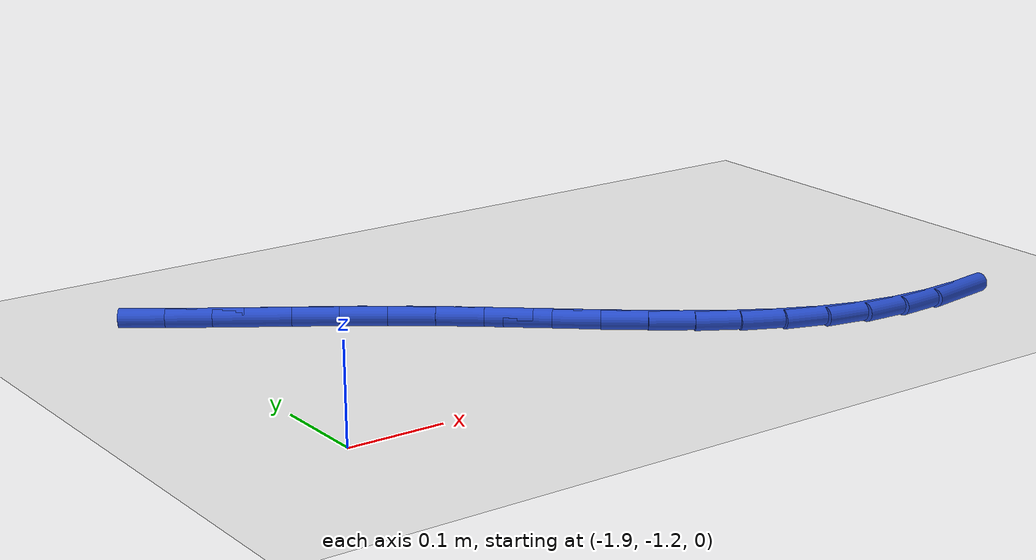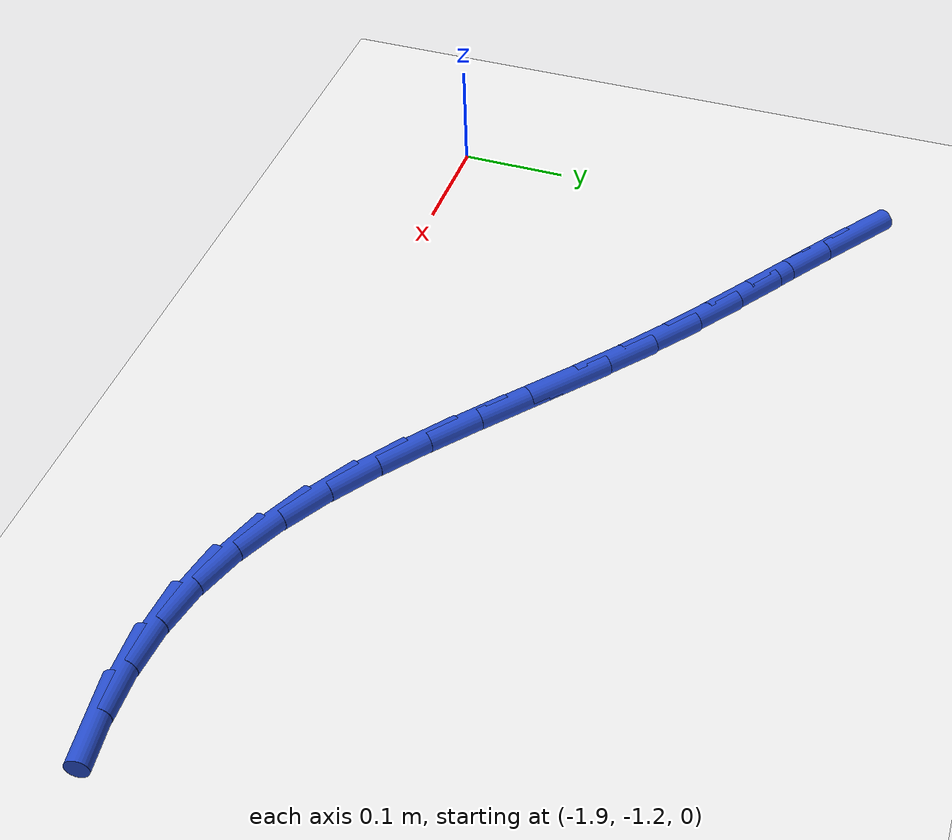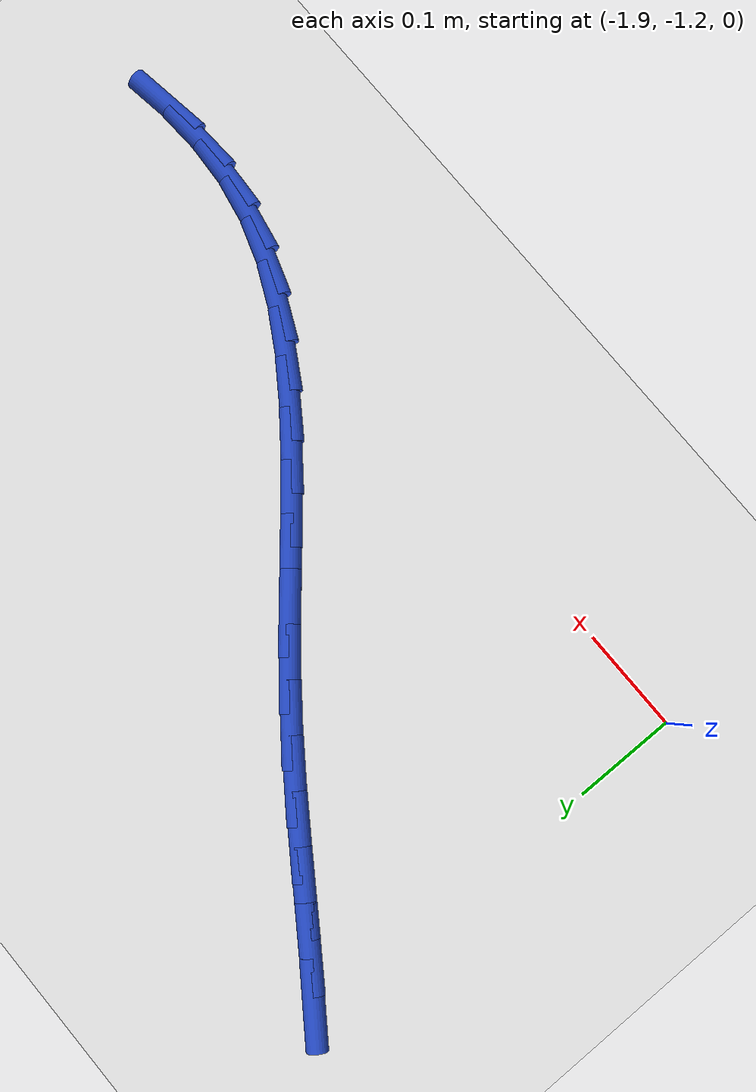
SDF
<sdf version="1.6">
 <world name="default">
  <model name="ground_plane">
   <static>1</static>
   <link name="link">
    <collision name="collision">
     <geometry><plane><normal>0 0 1</normal><size>100 100</size></plane></geometry>
     <surface><friction><ode><mu>100</mu><mu2>50</mu2></ode></friction></surface>
    </collision>
    <visual name="visual">
     <cast_shadows>0</cast_shadows>
     <geometry><plane><normal>0 0 1</normal><size>100 100</size></plane></geometry>
     <material>
      <script><uri>file://media/materials/scripts/gazebo.material</uri><name>Gazebo/WhiteGlow</name></script>
     </material>
    </visual>
   </link>
  </model>
  <model name="line">
   <link name="link_94">
    <pose>-1.8832917893304795 -0.8033387077930532 0.01 0 1.57 -0.6156576389026842</pose>
    <collision name="collision">
     <geometry><cylinder><radius>0.01</radius><length>0.08</length></cylinder></geometry>
    </collision>
    <visual name="visual">
     <material>
      <script><name>Gazebo/Blue</name><uri>file://media/materials/scripts/gazebo.material</uri></script>
     </material>
     <geometry><cylinder><radius>0.01</radius><length>0.08</length></cylinder></geometry>
    </visual>
   </link>
   <link name="link_95">
    <pose>-1.8446447985884504 -0.8306765730192794 0.01 0 1.57 -0.6001024888914664</pose>
    <collision name="collision">
     <geometry><cylinder><radius>0.01</radius><length>0.08</length></cylinder></geometry>
    </collision>
    <visual name="visual">
     <material>
      <script><name>Gazebo/Blue</name><uri>file://media/materials/scripts/gazebo.material</uri></script>
     </material>
     <geometry><cylinder><radius>0.01</radius><length>0.08</length></cylinder></geometry>
    </visual>
   </link>
   <link name="link_96">
    <pose>-1.8051309514042269 -0.8577153959131579 0.01 0 1.57 -0.5970113992315201</pose>
    <collision name="collision">
     <geometry><cylinder><radius>0.01</radius><length>0.08</length></cylinder></geometry>
    </collision>
    <visual name="visual">
     <material>
      <script><name>Gazebo/Blue</name><uri>file://media/materials/scripts/gazebo.material</uri></script>
     </material>
     <geometry><cylinder><radius>0.01</radius><length>0.08</length></cylinder></geometry>
    </visual>
   </link>
   <link name="link_97">
    <pose>-1.7651307719340887 -0.8849058520132681 0.01 0 1.57 -0.60600098085211</pose>
    <collision name="collision">
     <geometry><cylinder><radius>0.01</radius><length>0.08</length></cylinder></geometry>
    </collision>
    <visual name="visual">
     <material>
      <script><name>Gazebo/Blue</name><uri>file://media/materials/scripts/gazebo.material</uri></script>
     </material>
     <geometry><cylinder><radius>0.01</radius><length>0.08</length></cylinder></geometry>
    </visual>
   </link>
   <link name="link_98">
    <pose>-1.7250247843343214 -0.9126986168581882 0.01 0 1.57 -0.6267826666569197</pose>
    <collision name="collision">
     <geometry><cylinder><radius>0.01</radius><length>0.08</length></cylinder></geometry>
    </collision>
    <visual name="visual">
     <material>
      <script><name>Gazebo/Blue</name><uri>file://media/materials/scripts/gazebo.material</uri></script>
     </material>
     <geometry><cylinder><radius>0.01</radius><length>0.08</length></cylinder></geometry>
    </visual>
   </link>
   <link name="link_99">
    <pose>-1.6851935127612057 -0.9415443659864984 0.01 0 1.57 -0.6586759367988473</pose>
    <collision name="collision">
     <geometry><cylinder><radius>0.01</radius><length>0.08</length></cylinder></geometry>
    </collision>
    <visual name="visual">
     <material>
      <script><name>Gazebo/Blue</name><uri>file://media/materials/scripts/gazebo.material</uri></script>
     </material>
     <geometry><cylinder><radius>0.01</radius><length>0.08</length></cylinder></geometry>
    </visual>
   </link>
   <link name="link_100">
    <pose>-1.6460073690145287 -0.9718738727205092 0.01 0 1.57 -0.6890542026355025</pose>
    <collision name="collision">
     <geometry><cylinder><radius>0.01</radius><length>0.08</length></cylinder></geometry>
    </collision>
    <visual name="visual">
     <material>
      <script><name>Gazebo/Blue</name><uri>file://media/materials/scripts/gazebo.material</uri></script>
     </material>
     <geometry><cylinder><radius>0.01</radius><length>0.08</length></cylinder></geometry>
    </visual>
   </link>
   <link name="link_101">
    <pose>-1.607549821015433 -1.0035531736536158 0.01 0 1.57 -0.7043760636793011</pose>
    <collision name="collision">
     <geometry><cylinder><radius>0.01</radius><length>0.08</length></cylinder></geometry>
    </collision>
    <visual name="visual">
     <material>
      <script><name>Gazebo/Blue</name><uri>file://media/materials/scripts/gazebo.material</uri></script>
     </material>
     <geometry><cylinder><radius>0.01</radius><length>0.08</length></cylinder></geometry>
    </visual>
   </link>
   <link name="link_102">
    <pose>-1.5695834881061765 -1.035816840516569 0.01 0 1.57 -0.7041754456015676</pose>
    <collision name="collision">
     <geometry><cylinder><radius>0.01</radius><length>0.08</length></cylinder></geometry>
    </collision>
    <visual name="visual">
     <material>
      <script><name>Gazebo/Blue</name><uri>file://media/materials/scripts/gazebo.material</uri></script>
     </material>
     <geometry><cylinder><radius>0.01</radius><length>0.08</length></cylinder></geometry>
    </visual>
   </link>
   <link name="link_103">
    <pose>-1.5318540698077663 -1.0678661449935942 0.01 0 1.57 -0.68814421547477</pose>
    <collision name="collision">
     <geometry><cylinder><radius>0.01</radius><length>0.08</length></cylinder></geometry>
    </collision>
    <visual name="visual">
     <material>
      <script><name>Gazebo/Blue</name><uri>file://media/materials/scripts/gazebo.material</uri></script>
     </material>
     <geometry><cylinder><radius>0.01</radius><length>0.08</length></cylinder></geometry>
    </visual>
   </link>
   <link name="link_104">
    <pose>-1.4941072656412067 -1.0989023587689155 0.01 0 1.57 -0.6553551575679234</pose>
    <collision name="collision">
     <geometry><cylinder><radius>0.01</radius><length>0.08</length></cylinder></geometry>
    </collision>
    <visual name="visual">
     <material>
      <script><name>Gazebo/Blue</name><uri>file://media/materials/scripts/gazebo.material</uri></script>
     </material>
     <geometry><cylinder><radius>0.01</radius><length>0.08</length></cylinder></geometry>
    </visual>
   </link>
   <link name="link_105">
    <pose>-1.4560887751275047 -1.1281267535267598 0.01 0 1.57 -0.6043020555225758</pose>
    <collision name="collision">
     <geometry><cylinder><radius>0.01</radius><length>0.08</length></cylinder></geometry>
    </collision>
    <visual name="visual">
     <material>
      <script><name>Gazebo/Blue</name><uri>file://media/materials/scripts/gazebo.material</uri></script>
     </material>
     <geometry><cylinder><radius>0.01</radius><length>0.08</length></cylinder></geometry>
    </visual>
   </link>
   <link name="link_106">
    <pose>-1.4175442977876658 -1.1547406009513526 0.01 0 1.57 -0.5330899549238965</pose>
    <collision name="collision">
     <geometry><cylinder><radius>0.01</radius><length>0.08</length></cylinder></geometry>
    </collision>
    <visual name="visual">
     <material>
      <script><name>Gazebo/Blue</name><uri>file://media/materials/scripts/gazebo.material</uri></script>
     </material>
     <geometry><cylinder><radius>0.01</radius><length>0.08</length></cylinder></geometry>
    </visual>
   </link>
   <link name="link_107">
    <pose>-1.378219533142695 -1.177945172726919 0.01 0 1.57 -0.4399223284579075</pose>
    <collision name="collision">
     <geometry><cylinder><radius>0.01</radius><length>0.08</length></cylinder></geometry>
    </collision>
    <visual name="visual">
     <material>
      <script><name>Gazebo/Blue</name><uri>file://media/materials/scripts/gazebo.material</uri></script>
     </material>
     <geometry><cylinder><radius>0.01</radius><length>0.08</length></cylinder></geometry>
    </visual>
   </link>
   <link name="link_108">
    <pose>-1.3378601807135984 -1.1969417405376848 0.01 0 1.57 -0.32406290440725355</pose>
    <collision name="collision">
     <geometry><cylinder><radius>0.01</radius><length>0.08</length></cylinder></geometry>
    </collision>
    <visual name="visual">
     <material>
      <script><name>Gazebo/Blue</name><uri>file://media/materials/scripts/gazebo.material</uri></script>
     </material>
     <geometry><cylinder><radius>0.01</radius><length>0.08</length></cylinder></geometry>
    </visual>
   </link>
   <link name="link_109">
    <pose>-1.296211940021382 -1.2109315760678754 0.01 0 1.57 -0.1897426965612398</pose>
    <collision name="collision">
     <geometry><cylinder><radius>0.01</radius><length>0.08</length></cylinder></geometry>
    </collision>
    <visual name="visual">
     <material>
      <script><name>Gazebo/Blue</name><uri>file://media/materials/scripts/gazebo.material</uri></script>
     </material>
     <geometry><cylinder><radius>0.01</radius><length>0.08</length></cylinder></geometry>
    </visual>
   </link>
   <link name="link_110">
    <pose>-1.2530619437459654 -1.2192186636165587 0.01 0 1.57 -0.061203558707032195</pose>
    <collision name="collision">
     <geometry><cylinder><radius>0.01</radius><length>0.08</length></cylinder></geometry>
    </collision>
    <visual name="visual">
     <material>
      <script><name>Gazebo/Blue</name><uri>file://media/materials/scripts/gazebo.material</uri></script>
     </material>
     <geometry><cylinder><radius>0.01</radius><length>0.08</length></cylinder></geometry>
    </visual>
   </link>
   <link name="link_111">
    <pose>-1.2085362579490557 -1.2219472018138489 0.01 0 1.57 0.049837906871721654</pose>
    <collision name="collision">
     <geometry><cylinder><radius>0.01</radius><length>0.08</length></cylinder></geometry>
    </collision>
    <visual name="visual">
     <material>
      <script><name>Gazebo/Blue</name><uri>file://media/materials/scripts/gazebo.material</uri></script>
     </material>
     <geometry><cylinder><radius>0.01</radius><length>0.08</length></cylinder></geometry>
    </visual>
   </link>
   <link name="link_112">
    <pose>-1.1629266781929122 -1.2196722319773172 0.01 0 1.57 0.14383938432092125</pose>
    <collision name="collision">
     <geometry><cylinder><radius>0.01</radius><length>0.08</length></cylinder></geometry>
    </collision>
    <visual name="visual">
     <material>
      <script><name>Gazebo/Blue</name><uri>file://media/materials/scripts/gazebo.material</uri></script>
     </material>
     <geometry><cylinder><radius>0.01</radius><length>0.08</length></cylinder></geometry>
    </visual>
   </link>
  </model>
 </world>
</sdf>
